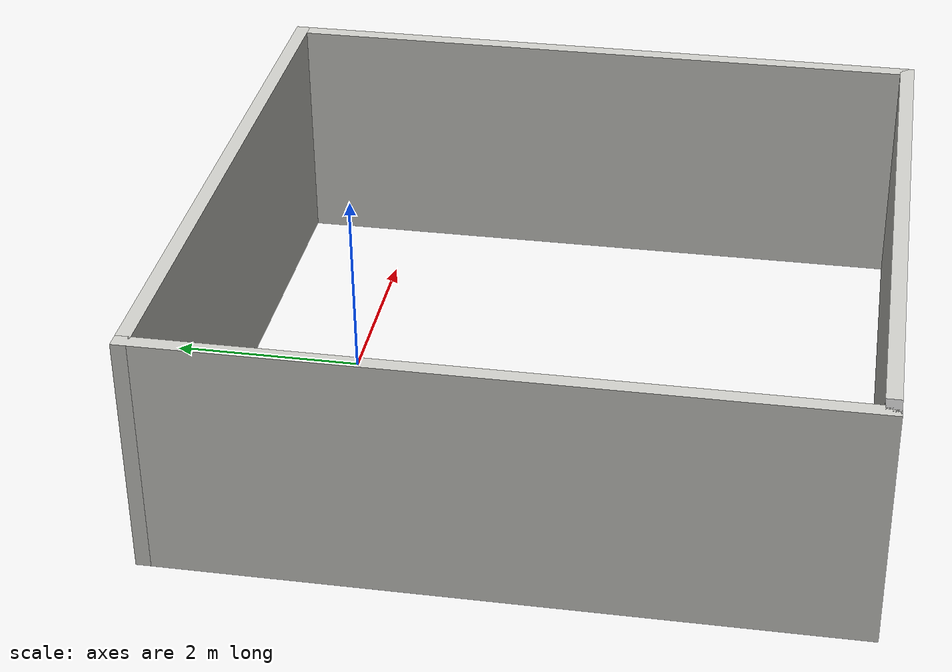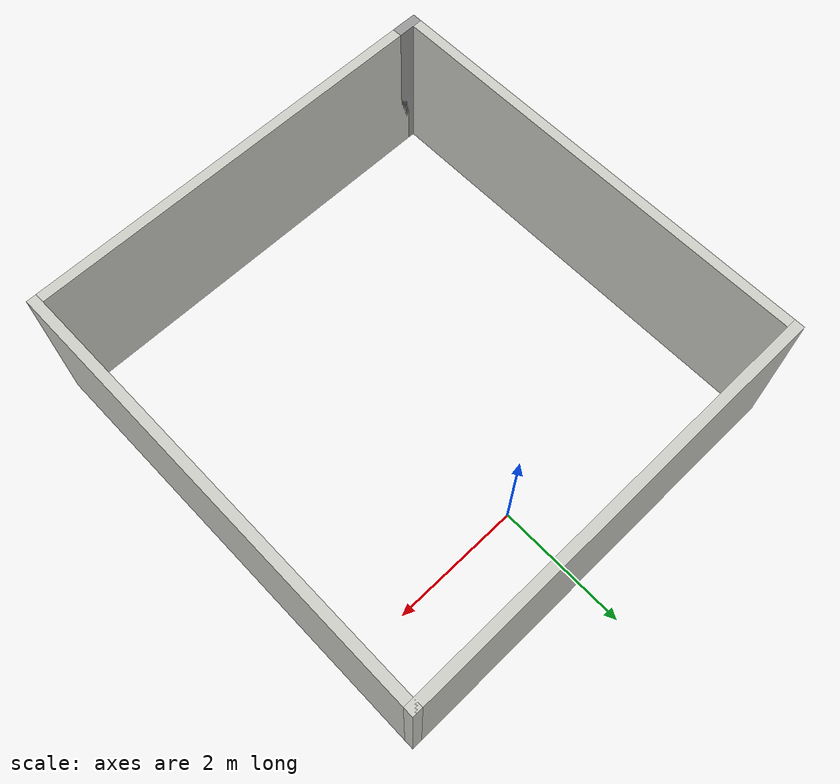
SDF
<?xml version='1.0'?>
<sdf version='1.7'>
  <model name='train_room'>
    <pose>-0.307961 -2.19103 0 0 -0 0</pose>
    <link name='Wall_2'>
      <collision name='Wall_2_Collision'>
        <geometry>
          <box>
            <size>6.5 0.15 2.5</size>
          </box>
        </geometry>
        <pose>0 0 1.25 0 -0 0</pose>
      </collision>
      <visual name='Wall_2_Visual'>
        <pose>0 0 1.25 0 -0 0</pose>
        <geometry>
          <box>
            <size>6.5 0.15 2.5</size>
          </box>
        </geometry>
        <material>
          <script>
            <uri>file://media/materials/scripts/gazebo.material</uri>
            <name>Gazebo/CeilingTiled</name>
          </script>
          <ambient>1 1 1 1</ambient>
        </material>
        <meta>
          <layer>0</layer>
        </meta>
      </visual>
      <pose>0.125 -3.425 0 0 -0 0</pose>
    </link>
    <link name='Wall_4'>
      <collision name='Wall_4_Collision'>
        <geometry>
          <box>
            <size>7 0.15 2.5</size>
          </box>
        </geometry>
        <pose>0 0 1.25 0 -0 0</pose>
      </collision>
      <visual name='Wall_4_Visual'>
        <pose>0 0 1.25 0 -0 0</pose>
        <geometry>
          <box>
            <size>7 0.15 2.5</size>
          </box>
        </geometry>
        <material>
          <script>
            <uri>file://media/materials/scripts/gazebo.material</uri>
            <name>Gazebo/CeilingTiled</name>
          </script>
          <ambient>1 1 1 1</ambient>
        </material>
        <meta>
          <layer>0</layer>
        </meta>
      </visual>
      <pose>3.3 -0 0 0 -0 1.5708</pose>
    </link>
    <link name='Wall_5'>
      <collision name='Wall_5_Collision'>
        <geometry>
          <box>
            <size>6.75 0.15 2.5</size>
          </box>
        </geometry>
        <pose>0 0 1.25 0 -0 0</pose>
      </collision>
      <visual name='Wall_5_Visual'>
        <pose>0 0 1.25 0 -0 0</pose>
        <geometry>
          <box>
            <size>6.75 0.15 2.5</size>
          </box>
        </geometry>
        <material>
          <script>
            <uri>file://media/materials/scripts/gazebo.material</uri>
            <name>Gazebo/CeilingTiled</name>
          </script>
          <ambient>1 1 1 1</ambient>
        </material>
        <meta>
          <layer>0</layer>
        </meta>
      </visual>
      <pose>0 3.425 0 0 -0 3.14159</pose>
    </link>
    <link name='Wall_6'>
      <collision name='Wall_6_Collision'>
        <geometry>
          <box>
            <size>7 0.15 2.5</size>
          </box>
        </geometry>
        <pose>0 0 1.25 0 -0 0</pose>
      </collision>
      <visual name='Wall_6_Visual'>
        <pose>0 0 1.25 0 -0 0</pose>
        <geometry>
          <box>
            <size>7 0.15 2.5</size>
          </box>
        </geometry>
        <material>
          <script>
            <uri>file://media/materials/scripts/gazebo.material</uri>
            <name>Gazebo/CeilingTiled</name>
          </script>
          <ambient>1 1 1 1</ambient>
        </material>
        <meta>
          <layer>0</layer>
        </meta>
      </visual>
      <pose>-3.3 -0 0 0 -0 -1.5708</pose>
    </link>
    <link name='Wall_7'>
      <collision name='Wall_7_Collision'>
        <geometry>
          <box>
            <size>0.4 0.15 2.5</size>
          </box>
        </geometry>
        <pose>0 0 1.25 0 -0 0</pose>
      </collision>
      <visual name='Wall_7_Visual'>
        <pose>0 0 1.25 0 -0 0</pose>
        <geometry>
          <box>
            <size>0.4 0.15 2.5</size>
          </box>
        </geometry>
        <material>
          <script>
            <uri>file://media/materials/scripts/gazebo.material</uri>
            <name>Gazebo/Grey</name>
          </script>
          <ambient>1 1 1 1</ambient>
        </material>
        <meta>
          <layer>0</layer>
        </meta>
      </visual>
      <pose>-3.175 -3.425 0 0 -0 0</pose>
    </link>
    <static>1</static>
  </model>
</sdf>
